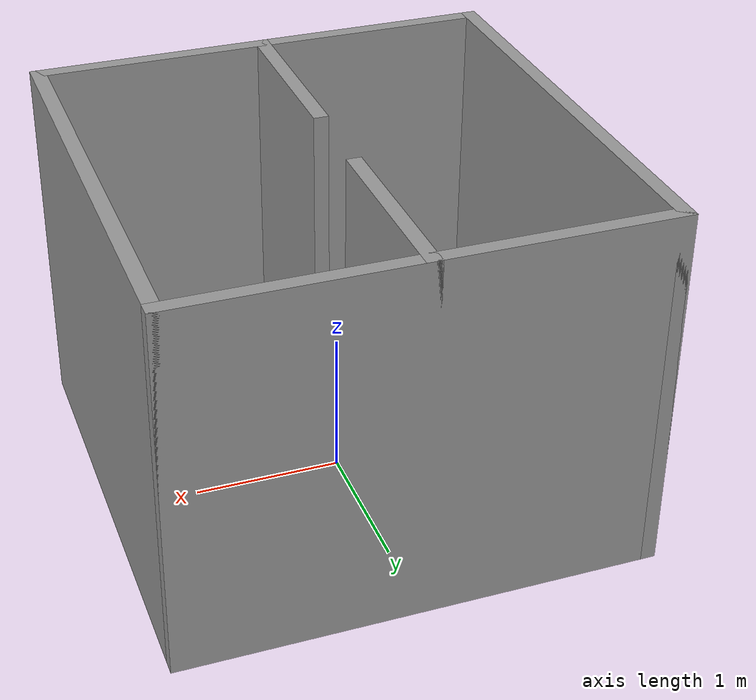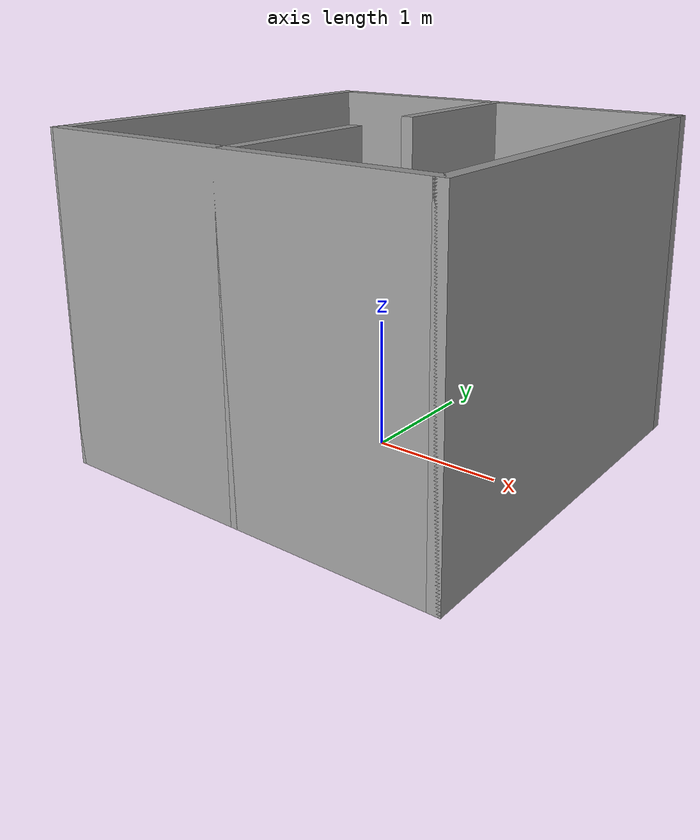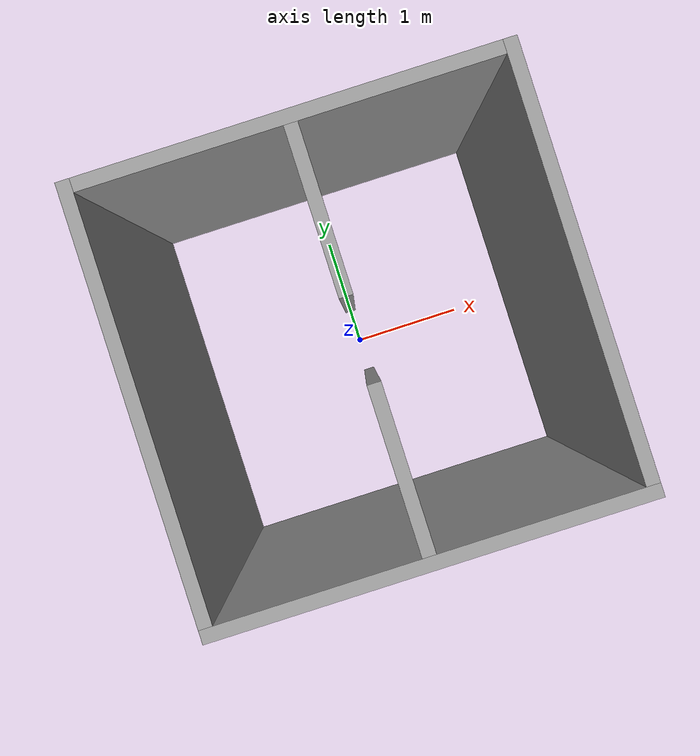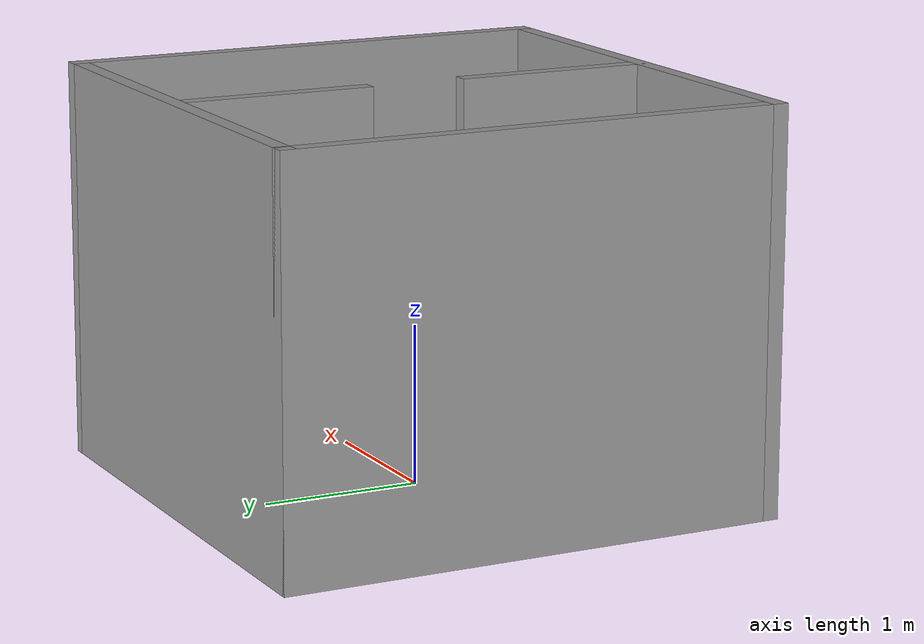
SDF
<?xml version='1.0'?>
<sdf version='1.7'>
  <model name='critical_point1'>
    <link name='Wall_0'>
      <pose>0 -1.55 0 0 -0 0</pose>
      <self_collide>0</self_collide>
      <enable_wind>0</enable_wind>
      <kinematic>0</kinematic>
      <visual name='Wall_0_Visual'>
        <pose>0 0 1.25 0 -0 0</pose>
        <geometry>
          <box>
            <size>3.2 0.1 2.5</size>
          </box>
        </geometry>
        <material>
          <script>
            <uri>file://media/materials/scripts/gazebo.material</uri>
            <name>Gazebo/Grey</name>
          </script>
          <ambient>1 1 1 1</ambient>
          <shader type='pixel'/>
        </material>
        <meta>
          <layer>0</layer>
        </meta>
        <transparency>0</transparency>
        <cast_shadows>1</cast_shadows>
      </visual>
      <collision name='Wall_0_Collision'>
        <laser_retro>0</laser_retro>
        <max_contacts>10</max_contacts>
        <pose>0 0 1.25 0 -0 0</pose>
        <geometry>
          <box>
            <size>3.2 0.1 2.5</size>
          </box>
        </geometry>
        <surface>
          <friction>
            <ode>
              <mu>1</mu>
              <mu2>1</mu2>
              <fdir1>0 0 0</fdir1>
              <slip1>0</slip1>
              <slip2>0</slip2>
            </ode>
            <torsional>
              <coefficient>1</coefficient>
              <patch_radius>0</patch_radius>
              <surface_radius>0</surface_radius>
              <use_patch_radius>1</use_patch_radius>
              <ode>
                <slip>0</slip>
              </ode>
            </torsional>
          </friction>
          <bounce>
            <restitution_coefficient>0</restitution_coefficient>
            <threshold>1e+06</threshold>
          </bounce>
          <contact>
            <collide_without_contact>0</collide_without_contact>
            <collide_without_contact_bitmask>1</collide_without_contact_bitmask>
            <collide_bitmask>1</collide_bitmask>
            <ode>
              <soft_cfm>0</soft_cfm>
              <soft_erp>0.2</soft_erp>
              <kp>1e+13</kp>
              <kd>1</kd>
              <max_vel>0.01</max_vel>
              <min_depth>0</min_depth>
            </ode>
            <bullet>
              <split_impulse>1</split_impulse>
              <split_impulse_penetration_threshold>-0.01</split_impulse_penetration_threshold>
              <soft_cfm>0</soft_cfm>
              <soft_erp>0.2</soft_erp>
              <kp>1e+13</kp>
              <kd>1</kd>
            </bullet>
          </contact>
        </surface>
      </collision>
    </link>
    <link name='Wall_10'>
      <pose>0 -0.95 0 0 -0 1.5708</pose>
      <self_collide>0</self_collide>
      <enable_wind>0</enable_wind>
      <kinematic>0</kinematic>
      <visual name='Wall_10_Visual'>
        <pose>0 0 1.25 0 -0 0</pose>
        <geometry>
          <box>
            <size>1.3 0.1 2.5</size>
          </box>
        </geometry>
        <material>
          <script>
            <uri>file://media/materials/scripts/gazebo.material</uri>
            <name>Gazebo/Grey</name>
          </script>
          <ambient>1 1 1 1</ambient>
          <shader type='pixel'/>
        </material>
        <meta>
          <layer>0</layer>
        </meta>
        <transparency>0</transparency>
        <cast_shadows>1</cast_shadows>
      </visual>
      <collision name='Wall_10_Collision'>
        <laser_retro>0</laser_retro>
        <max_contacts>10</max_contacts>
        <pose>0 0 1.25 0 -0 0</pose>
        <geometry>
          <box>
            <size>1.3 0.1 2.5</size>
          </box>
        </geometry>
        <surface>
          <friction>
            <ode>
              <mu>1</mu>
              <mu2>1</mu2>
              <fdir1>0 0 0</fdir1>
              <slip1>0</slip1>
              <slip2>0</slip2>
            </ode>
            <torsional>
              <coefficient>1</coefficient>
              <patch_radius>0</patch_radius>
              <surface_radius>0</surface_radius>
              <use_patch_radius>1</use_patch_radius>
              <ode>
                <slip>0</slip>
              </ode>
            </torsional>
          </friction>
          <bounce>
            <restitution_coefficient>0</restitution_coefficient>
            <threshold>1e+06</threshold>
          </bounce>
          <contact>
            <collide_without_contact>0</collide_without_contact>
            <collide_without_contact_bitmask>1</collide_without_contact_bitmask>
            <collide_bitmask>1</collide_bitmask>
            <ode>
              <soft_cfm>0</soft_cfm>
              <soft_erp>0.2</soft_erp>
              <kp>1e+13</kp>
              <kd>1</kd>
              <max_vel>0.01</max_vel>
              <min_depth>0</min_depth>
            </ode>
            <bullet>
              <split_impulse>1</split_impulse>
              <split_impulse_penetration_threshold>-0.01</split_impulse_penetration_threshold>
              <soft_cfm>0</soft_cfm>
              <soft_erp>0.2</soft_erp>
              <kp>1e+13</kp>
              <kd>1</kd>
            </bullet>
          </contact>
        </surface>
      </collision>
    </link>
    <link name='Wall_2'>
      <pose>-1.55 0 0 0 -0 1.5708</pose>
      <self_collide>0</self_collide>
      <enable_wind>0</enable_wind>
      <kinematic>0</kinematic>
      <visual name='Wall_2_Visual'>
        <pose>0 0 1.25 0 -0 0</pose>
        <geometry>
          <box>
            <size>3.2 0.1 2.5</size>
          </box>
        </geometry>
        <material>
          <script>
            <uri>file://media/materials/scripts/gazebo.material</uri>
            <name>Gazebo/Grey</name>
          </script>
          <ambient>1 1 1 1</ambient>
          <shader type='pixel'/>
        </material>
        <meta>
          <layer>0</layer>
        </meta>
        <transparency>0</transparency>
        <cast_shadows>1</cast_shadows>
      </visual>
      <collision name='Wall_2_Collision'>
        <laser_retro>0</laser_retro>
        <max_contacts>10</max_contacts>
        <pose>0 0 1.25 0 -0 0</pose>
        <geometry>
          <box>
            <size>3.2 0.1 2.5</size>
          </box>
        </geometry>
        <surface>
          <friction>
            <ode>
              <mu>1</mu>
              <mu2>1</mu2>
              <fdir1>0 0 0</fdir1>
              <slip1>0</slip1>
              <slip2>0</slip2>
            </ode>
            <torsional>
              <coefficient>1</coefficient>
              <patch_radius>0</patch_radius>
              <surface_radius>0</surface_radius>
              <use_patch_radius>1</use_patch_radius>
              <ode>
                <slip>0</slip>
              </ode>
            </torsional>
          </friction>
          <bounce>
            <restitution_coefficient>0</restitution_coefficient>
            <threshold>1e+06</threshold>
          </bounce>
          <contact>
            <collide_without_contact>0</collide_without_contact>
            <collide_without_contact_bitmask>1</collide_without_contact_bitmask>
            <collide_bitmask>1</collide_bitmask>
            <ode>
              <soft_cfm>0</soft_cfm>
              <soft_erp>0.2</soft_erp>
              <kp>1e+13</kp>
              <kd>1</kd>
              <max_vel>0.01</max_vel>
              <min_depth>0</min_depth>
            </ode>
            <bullet>
              <split_impulse>1</split_impulse>
              <split_impulse_penetration_threshold>-0.01</split_impulse_penetration_threshold>
              <soft_cfm>0</soft_cfm>
              <soft_erp>0.2</soft_erp>
              <kp>1e+13</kp>
              <kd>1</kd>
            </bullet>
          </contact>
        </surface>
      </collision>
    </link>
    <link name='Wall_4'>
      <pose>1.55 0 0 0 -0 1.5708</pose>
      <self_collide>0</self_collide>
      <enable_wind>0</enable_wind>
      <kinematic>0</kinematic>
      <visual name='Wall_4_Visual'>
        <pose>0 0 1.25 0 -0 0</pose>
        <geometry>
          <box>
            <size>3.2 0.1 2.5</size>
          </box>
        </geometry>
        <material>
          <script>
            <uri>file://media/materials/scripts/gazebo.material</uri>
            <name>Gazebo/Grey</name>
          </script>
          <ambient>1 1 1 1</ambient>
          <shader type='pixel'/>
        </material>
        <meta>
          <layer>0</layer>
        </meta>
        <transparency>0</transparency>
        <cast_shadows>1</cast_shadows>
      </visual>
      <collision name='Wall_4_Collision'>
        <laser_retro>0</laser_retro>
        <max_contacts>10</max_contacts>
        <pose>0 0 1.25 0 -0 0</pose>
        <geometry>
          <box>
            <size>3.2 0.1 2.5</size>
          </box>
        </geometry>
        <surface>
          <friction>
            <ode>
              <mu>1</mu>
              <mu2>1</mu2>
              <fdir1>0 0 0</fdir1>
              <slip1>0</slip1>
              <slip2>0</slip2>
            </ode>
            <torsional>
              <coefficient>1</coefficient>
              <patch_radius>0</patch_radius>
              <surface_radius>0</surface_radius>
              <use_patch_radius>1</use_patch_radius>
              <ode>
                <slip>0</slip>
              </ode>
            </torsional>
          </friction>
          <bounce>
            <restitution_coefficient>0</restitution_coefficient>
            <threshold>1e+06</threshold>
          </bounce>
          <contact>
            <collide_without_contact>0</collide_without_contact>
            <collide_without_contact_bitmask>1</collide_without_contact_bitmask>
            <collide_bitmask>1</collide_bitmask>
            <ode>
              <soft_cfm>0</soft_cfm>
              <soft_erp>0.2</soft_erp>
              <kp>1e+13</kp>
              <kd>1</kd>
              <max_vel>0.01</max_vel>
              <min_depth>0</min_depth>
            </ode>
            <bullet>
              <split_impulse>1</split_impulse>
              <split_impulse_penetration_threshold>-0.01</split_impulse_penetration_threshold>
              <soft_cfm>0</soft_cfm>
              <soft_erp>0.2</soft_erp>
              <kp>1e+13</kp>
              <kd>1</kd>
            </bullet>
          </contact>
        </surface>
      </collision>
    </link>
    <link name='Wall_6'>
      <pose>0 1.55 0 0 -0 0</pose>
      <self_collide>0</self_collide>
      <enable_wind>0</enable_wind>
      <kinematic>0</kinematic>
      <visual name='Wall_6_Visual'>
        <pose>0 0 1.25 0 -0 0</pose>
        <geometry>
          <box>
            <size>3.2 0.1 2.5</size>
          </box>
        </geometry>
        <material>
          <script>
            <uri>file://media/materials/scripts/gazebo.material</uri>
            <name>Gazebo/Grey</name>
          </script>
          <ambient>1 1 1 1</ambient>
          <shader type='pixel'/>
        </material>
        <meta>
          <layer>0</layer>
        </meta>
        <transparency>0</transparency>
        <cast_shadows>1</cast_shadows>
      </visual>
      <collision name='Wall_6_Collision'>
        <laser_retro>0</laser_retro>
        <max_contacts>10</max_contacts>
        <pose>0 0 1.25 0 -0 0</pose>
        <geometry>
          <box>
            <size>3.2 0.1 2.5</size>
          </box>
        </geometry>
        <surface>
          <friction>
            <ode>
              <mu>1</mu>
              <mu2>1</mu2>
              <fdir1>0 0 0</fdir1>
              <slip1>0</slip1>
              <slip2>0</slip2>
            </ode>
            <torsional>
              <coefficient>1</coefficient>
              <patch_radius>0</patch_radius>
              <surface_radius>0</surface_radius>
              <use_patch_radius>1</use_patch_radius>
              <ode>
                <slip>0</slip>
              </ode>
            </torsional>
          </friction>
          <bounce>
            <restitution_coefficient>0</restitution_coefficient>
            <threshold>1e+06</threshold>
          </bounce>
          <contact>
            <collide_without_contact>0</collide_without_contact>
            <collide_without_contact_bitmask>1</collide_without_contact_bitmask>
            <collide_bitmask>1</collide_bitmask>
            <ode>
              <soft_cfm>0</soft_cfm>
              <soft_erp>0.2</soft_erp>
              <kp>1e+13</kp>
              <kd>1</kd>
              <max_vel>0.01</max_vel>
              <min_depth>0</min_depth>
            </ode>
            <bullet>
              <split_impulse>1</split_impulse>
              <split_impulse_penetration_threshold>-0.01</split_impulse_penetration_threshold>
              <soft_cfm>0</soft_cfm>
              <soft_erp>0.2</soft_erp>
              <kp>1e+13</kp>
              <kd>1</kd>
            </bullet>
          </contact>
        </surface>
      </collision>
    </link>
    <link name='Wall_8'>
      <pose>0 0.95 0 0 0 -1.5708</pose>
      <self_collide>0</self_collide>
      <enable_wind>0</enable_wind>
      <kinematic>0</kinematic>
      <visual name='Wall_8_Visual'>
        <pose>0 0 1.25 0 -0 0</pose>
        <geometry>
          <box>
            <size>1.3 0.1 2.5</size>
          </box>
        </geometry>
        <material>
          <script>
            <uri>file://media/materials/scripts/gazebo.material</uri>
            <name>Gazebo/Grey</name>
          </script>
          <ambient>1 1 1 1</ambient>
          <shader type='pixel'/>
        </material>
        <meta>
          <layer>0</layer>
        </meta>
        <transparency>0</transparency>
        <cast_shadows>1</cast_shadows>
      </visual>
      <collision name='Wall_8_Collision'>
        <laser_retro>0</laser_retro>
        <max_contacts>10</max_contacts>
        <pose>0 0 1.25 0 -0 0</pose>
        <geometry>
          <box>
            <size>1.3 0.1 2.5</size>
          </box>
        </geometry>
        <surface>
          <friction>
            <ode>
              <mu>1</mu>
              <mu2>1</mu2>
              <fdir1>0 0 0</fdir1>
              <slip1>0</slip1>
              <slip2>0</slip2>
            </ode>
            <torsional>
              <coefficient>1</coefficient>
              <patch_radius>0</patch_radius>
              <surface_radius>0</surface_radius>
              <use_patch_radius>1</use_patch_radius>
              <ode>
                <slip>0</slip>
              </ode>
            </torsional>
          </friction>
          <bounce>
            <restitution_coefficient>0</restitution_coefficient>
            <threshold>1e+06</threshold>
          </bounce>
          <contact>
            <collide_without_contact>0</collide_without_contact>
            <collide_without_contact_bitmask>1</collide_without_contact_bitmask>
            <collide_bitmask>1</collide_bitmask>
            <ode>
              <soft_cfm>0</soft_cfm>
              <soft_erp>0.2</soft_erp>
              <kp>1e+13</kp>
              <kd>1</kd>
              <max_vel>0.01</max_vel>
              <min_depth>0</min_depth>
            </ode>
            <bullet>
              <split_impulse>1</split_impulse>
              <split_impulse_penetration_threshold>-0.01</split_impulse_penetration_threshold>
              <soft_cfm>0</soft_cfm>
              <soft_erp>0.2</soft_erp>
              <kp>1e+13</kp>
              <kd>1</kd>
            </bullet>
          </contact>
        </surface>
      </collision>
    </link>
    <static>1</static>
    <allow_auto_disable>1</allow_auto_disable>
  </model>
</sdf>
